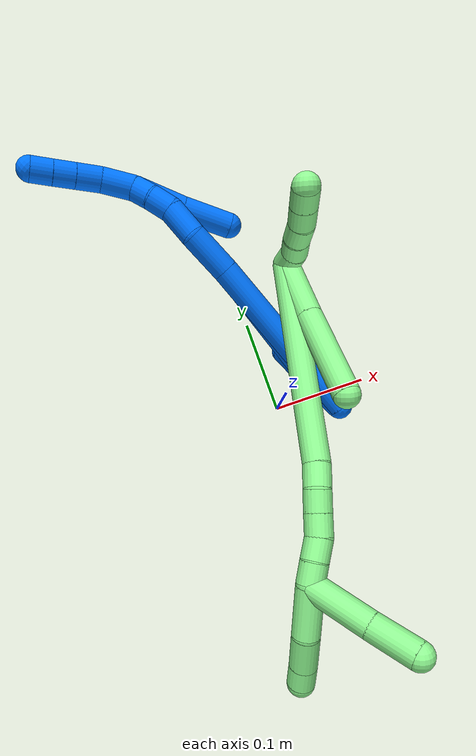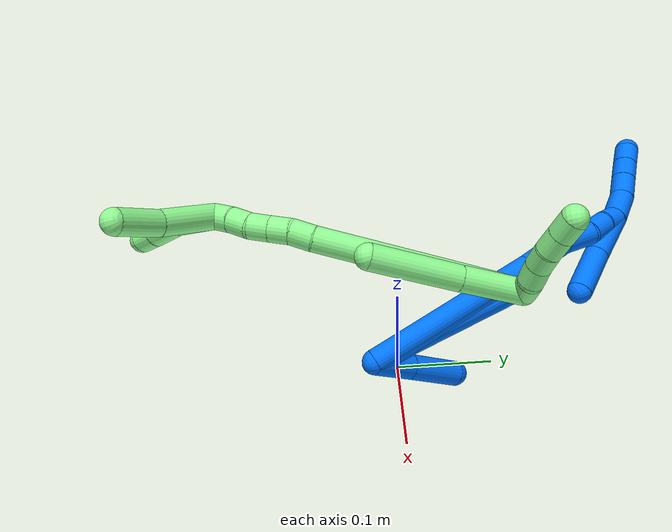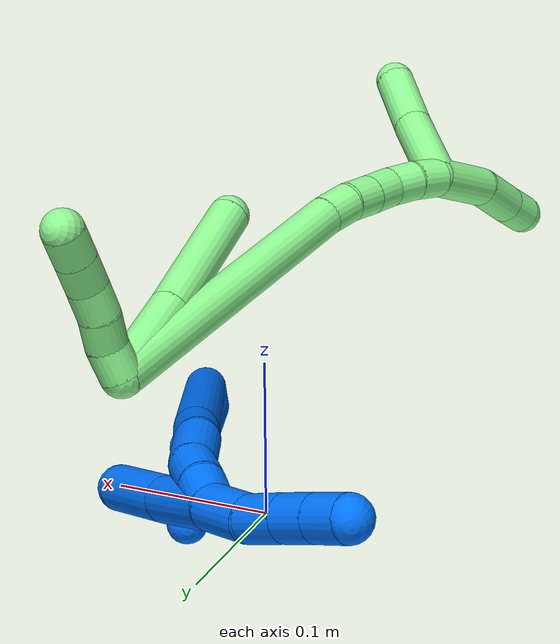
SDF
<sdf version="1.7">
 <world name="default">
  <model name="13">
   <static>0</static>
   <link name="13">
    <collision name="collision-cylinder-e_1_2_8">
     <pose>-0.012585 -0.017956 0.022479 0.674006 -0.412348 -0.146295</pose>
     <geometry><cylinder><radius>0.0125</radius><length>0.062804</length></cylinder></geometry>
     <surface>
      <friction><ode><mu>1.16</mu><mu2>1.16</mu2><slip1>0</slip1><slip2>0</slip2></ode></friction>
      <contact><ode><kp>1e+06</kp><kd>1</kd><max_vel>0</max_vel><min_depth>0.001</min_depth></ode></contact>
     </surface>
    </collision>
    <visual name="visual-cylinder-e_1_2_8">
     <pose>-0.012585 -0.017956 0.022479 0.674006 -0.412348 -0.146295</pose>
     <geometry><cylinder><radius>0.0125</radius><length>0.062804</length></cylinder></geometry>
     <material><ambient>0.564706 0.984314 0.572549 1</ambient></material>
    </visual>
    <collision name="collision-cylinder-e_2_8_6">
     <pose>-0.043424 -0.061599 0.075086 0.706008 -0.432028 -0.161347</pose>
     <geometry><cylinder><radius>0.0125</radius><length>0.087196</length></cylinder></geometry>
     <surface>
      <friction><ode><mu>1.16</mu><mu2>1.16</mu2><slip1>0</slip1><slip2>0</slip2></ode></friction>
      <contact><ode><kp>1e+06</kp><kd>1</kd><max_vel>0</max_vel><min_depth>0.001</min_depth></ode></contact>
     </surface>
    </collision>
    <visual name="visual-cylinder-e_2_8_6">
     <pose>-0.043424 -0.061599 0.075086 0.706008 -0.432028 -0.161347</pose>
     <geometry><cylinder><radius>0.0125</radius><length>0.087196</length></cylinder></geometry>
     <material><ambient>0.564706 0.984314 0.572549 1</ambient></material>
    </visual>
    <collision name="collision-cylinder-e_1_2_9">
     <pose>-0.00518 -0.006363 -0.005716 2.30267 -0.544486 -1.11871</pose>
     <geometry><cylinder><radius>0.0125</radius><length>0.02</length></cylinder></geometry>
     <surface>
      <friction><ode><mu>1.16</mu><mu2>1.16</mu2><slip1>0</slip1><slip2>0</slip2></ode></friction>
      <contact><ode><kp>1e+06</kp><kd>1</kd><max_vel>0</max_vel><min_depth>0.001</min_depth></ode></contact>
     </surface>
    </collision>
    <visual name="visual-cylinder-e_1_2_9">
     <pose>-0.00518 -0.006363 -0.005716 2.30267 -0.544486 -1.11871</pose>
     <geometry><cylinder><radius>0.0125</radius><length>0.02</length></cylinder></geometry>
     <material><ambient>0.564706 0.984314 0.572549 1</ambient></material>
    </visual>
    <collision name="collision-cylinder-e_2_9_10">
     <pose>-0.012678 -0.020289 -0.017551 2.25102 -0.233974 -0.48289</pose>
     <geometry><cylinder><radius>0.0125</radius><length>0.02</length></cylinder></geometry>
     <surface>
      <friction><ode><mu>1.16</mu><mu2>1.16</mu2><slip1>0</slip1><slip2>0</slip2></ode></friction>
      <contact><ode><kp>1e+06</kp><kd>1</kd><max_vel>0</max_vel><min_depth>0.001</min_depth></ode></contact>
     </surface>
    </collision>
    <visual name="visual-cylinder-e_2_9_10">
     <pose>-0.012678 -0.020289 -0.017551 2.25102 -0.233974 -0.48289</pose>
     <geometry><cylinder><radius>0.0125</radius><length>0.02</length></cylinder></geometry>
     <material><ambient>0.564706 0.984314 0.572549 1</ambient></material>
    </visual>
    <collision name="collision-cylinder-e_3_10_11">
     <pose>-0.018379 -0.034568 -0.030261 2.34687 -0.345007 -0.787007</pose>
     <geometry><cylinder><radius>0.0125</radius><length>0.02</length></cylinder></geometry>
     <surface>
      <friction><ode><mu>1.16</mu><mu2>1.16</mu2><slip1>0</slip1><slip2>0</slip2></ode></friction>
      <contact><ode><kp>1e+06</kp><kd>1</kd><max_vel>0</max_vel><min_depth>0.001</min_depth></ode></contact>
     </surface>
    </collision>
    <visual name="visual-cylinder-e_3_10_11">
     <pose>-0.018379 -0.034568 -0.030261 2.34687 -0.345007 -0.787007</pose>
     <geometry><cylinder><radius>0.0125</radius><length>0.02</length></cylinder></geometry>
     <material><ambient>0.564706 0.984314 0.572549 1</ambient></material>
    </visual>
    <collision name="collision-cylinder-e_4_11_12">
     <pose>-0.023713 -0.047668 -0.044299 2.43285 -0.196547 -0.520834</pose>
     <geometry><cylinder><radius>0.0125</radius><length>0.02</length></cylinder></geometry>
     <surface>
      <friction><ode><mu>1.16</mu><mu2>1.16</mu2><slip1>0</slip1><slip2>0</slip2></ode></friction>
      <contact><ode><kp>1e+06</kp><kd>1</kd><max_vel>0</max_vel><min_depth>0.001</min_depth></ode></contact>
     </surface>
    </collision>
    <visual name="visual-cylinder-e_4_11_12">
     <pose>-0.023713 -0.047668 -0.044299 2.43285 -0.196547 -0.520834</pose>
     <geometry><cylinder><radius>0.0125</radius><length>0.02</length></cylinder></geometry>
     <material><ambient>0.564706 0.984314 0.572549 1</ambient></material>
    </visual>
    <collision name="collision-cylinder-e_5_12_5">
     <pose>-0.027699 -0.0604 -0.059198 2.43609 -0.204736 -0.544231</pose>
     <geometry><cylinder><radius>0.0125</radius><length>0.02</length></cylinder></geometry>
     <surface>
      <friction><ode><mu>1.16</mu><mu2>1.16</mu2><slip1>0</slip1><slip2>0</slip2></ode></friction>
      <contact><ode><kp>1e+06</kp><kd>1</kd><max_vel>0</max_vel><min_depth>0.001</min_depth></ode></contact>
     </surface>
    </collision>
    <visual name="visual-cylinder-e_5_12_5">
     <pose>-0.027699 -0.0604 -0.059198 2.43609 -0.204736 -0.544231</pose>
     <geometry><cylinder><radius>0.0125</radius><length>0.02</length></cylinder></geometry>
     <material><ambient>0.564706 0.984314 0.572549 1</ambient></material>
    </visual>
    <collision name="collision-cylinder-e_1_2_13">
     <pose>-0.018673 -0.05448 0.080579 0.594505 -0.189672 -0.05826</pose>
     <geometry><cylinder><radius>0.0125</radius><length>0.198088</length></cylinder></geometry>
     <surface>
      <friction><ode><mu>1.16</mu><mu2>1.16</mu2><slip1>0</slip1><slip2>0</slip2></ode></friction>
      <contact><ode><kp>1e+06</kp><kd>1</kd><max_vel>0</max_vel><min_depth>0.001</min_depth></ode></contact>
     </surface>
    </collision>
    <visual name="visual-cylinder-e_1_2_13">
     <pose>-0.018673 -0.05448 0.080579 0.594505 -0.189672 -0.05826</pose>
     <geometry><cylinder><radius>0.0125</radius><length>0.198088</length></cylinder></geometry>
     <material><ambient>0.564706 0.984314 0.572549 1</ambient></material>
    </visual>
    <collision name="collision-cylinder-e_2_13_14">
     <pose>-0.038005 -0.114988 0.170105 0.592947 -0.060937 -0.01862</pose>
     <geometry><cylinder><radius>0.0125</radius><length>0.021616</length></cylinder></geometry>
     <surface>
      <friction><ode><mu>1.16</mu><mu2>1.16</mu2><slip1>0</slip1><slip2>0</slip2></ode></friction>
      <contact><ode><kp>1e+06</kp><kd>1</kd><max_vel>0</max_vel><min_depth>0.001</min_depth></ode></contact>
     </surface>
    </collision>
    <visual name="visual-cylinder-e_2_13_14">
     <pose>-0.038005 -0.114988 0.170105 0.592947 -0.060937 -0.01862</pose>
     <geometry><cylinder><radius>0.0125</radius><length>0.021616</length></cylinder></geometry>
     <material><ambient>0.564706 0.984314 0.572549 1</ambient></material>
    </visual>
    <collision name="collision-cylinder-e_3_14_15">
     <pose>-0.039156 -0.124931 0.188273 0.401461 -0.049199 -0.010012</pose>
     <geometry><cylinder><radius>0.0125</radius><length>0.02006</length></cylinder></geometry>
     <surface>
      <friction><ode><mu>1.16</mu><mu2>1.16</mu2><slip1>0</slip1><slip2>0</slip2></ode></friction>
      <contact><ode><kp>1e+06</kp><kd>1</kd><max_vel>0</max_vel><min_depth>0.001</min_depth></ode></contact>
     </surface>
    </collision>
    <visual name="visual-cylinder-e_3_14_15">
     <pose>-0.039156 -0.124931 0.188273 0.401461 -0.049199 -0.010012</pose>
     <geometry><cylinder><radius>0.0125</radius><length>0.02006</length></cylinder></geometry>
     <material><ambient>0.564706 0.984314 0.572549 1</ambient></material>
    </visual>
    <collision name="collision-cylinder-e_4_15_16">
     <pose>-0.040294 -0.132947 0.206715 0.418486 -0.063766 -0.013545</pose>
     <geometry><cylinder><radius>0.0125</radius><length>0.020226</length></cylinder></geometry>
     <surface>
      <friction><ode><mu>1.16</mu><mu2>1.16</mu2><slip1>0</slip1><slip2>0</slip2></ode></friction>
      <contact><ode><kp>1e+06</kp><kd>1</kd><max_vel>0</max_vel><min_depth>0.001</min_depth></ode></contact>
     </surface>
    </collision>
    <visual name="visual-cylinder-e_4_15_16">
     <pose>-0.040294 -0.132947 0.206715 0.418486 -0.063766 -0.013545</pose>
     <geometry><cylinder><radius>0.0125</radius><length>0.020226</length></cylinder></geometry>
     <material><ambient>0.564706 0.984314 0.572549 1</ambient></material>
    </visual>
    <collision name="collision-cylinder-e_5_16_17">
     <pose>-0.03935 -0.141796 0.224594 0.501617 0.159546 0.040957</pose>
     <geometry><cylinder><radius>0.0125</radius><length>0.02</length></cylinder></geometry>
     <surface>
      <friction><ode><mu>1.16</mu><mu2>1.16</mu2><slip1>0</slip1><slip2>0</slip2></ode></friction>
      <contact><ode><kp>1e+06</kp><kd>1</kd><max_vel>0</max_vel><min_depth>0.001</min_depth></ode></contact>
     </surface>
    </collision>
    <visual name="visual-cylinder-e_5_16_17">
     <pose>-0.03935 -0.141796 0.224594 0.501617 0.159546 0.040957</pose>
     <geometry><cylinder><radius>0.0125</radius><length>0.02</length></cylinder></geometry>
     <material><ambient>0.564706 0.984314 0.572549 1</ambient></material>
    </visual>
    <collision name="collision-cylinder-e_6_17_1">
     <pose>-0.036171 -0.150155 0.242444 0.374367 0.159601 0.03029</pose>
     <geometry><cylinder><radius>0.0125</radius><length>0.020009</length></cylinder></geometry>
     <surface>
      <friction><ode><mu>1.16</mu><mu2>1.16</mu2><slip1>0</slip1><slip2>0</slip2></ode></friction>
      <contact><ode><kp>1e+06</kp><kd>1</kd><max_vel>0</max_vel><min_depth>0.001</min_depth></ode></contact>
     </surface>
    </collision>
    <visual name="visual-cylinder-e_6_17_1">
     <pose>-0.036171 -0.150155 0.242444 0.374367 0.159601 0.03029</pose>
     <geometry><cylinder><radius>0.0125</radius><length>0.020009</length></cylinder></geometry>
     <material><ambient>0.564706 0.984314 0.572549 1</ambient></material>
    </visual>
    <collision name="collision-cylinder-e_1_1_18">
     <pose>-0.059526 -0.162313 0.262885 0.649745 -1.05553 -0.387728</pose>
     <geometry><cylinder><radius>0.0125</radius><length>0.057333</length></cylinder></geometry>
     <surface>
      <friction><ode><mu>1.16</mu><mu2>1.16</mu2><slip1>0</slip1><slip2>0</slip2></ode></friction>
      <contact><ode><kp>1e+06</kp><kd>1</kd><max_vel>0</max_vel><min_depth>0.001</min_depth></ode></contact>
     </surface>
    </collision>
    <visual name="visual-cylinder-e_1_1_18">
     <pose>-0.059526 -0.162313 0.262885 0.649745 -1.05553 -0.387728</pose>
     <geometry><cylinder><radius>0.0125</radius><length>0.057333</length></cylinder></geometry>
     <material><ambient>0.564706 0.984314 0.572549 1</ambient></material>
    </visual>
    <collision name="collision-cylinder-e_2_18_4">
     <pose>-0.102974 -0.179771 0.279904 0.996103 -1.04984 -0.610155</pose>
     <geometry><cylinder><radius>0.0125</radius><length>0.042667</length></cylinder></geometry>
     <surface>
      <friction><ode><mu>1.16</mu><mu2>1.16</mu2><slip1>0</slip1><slip2>0</slip2></ode></friction>
      <contact><ode><kp>1e+06</kp><kd>1</kd><max_vel>0</max_vel><min_depth>0.001</min_depth></ode></contact>
     </surface>
    </collision>
    <visual name="visual-cylinder-e_2_18_4">
     <pose>-0.102974 -0.179771 0.279904 0.996103 -1.04984 -0.610155</pose>
     <geometry><cylinder><radius>0.0125</radius><length>0.042667</length></cylinder></geometry>
     <material><ambient>0.564706 0.984314 0.572549 1</ambient></material>
    </visual>
    <collision name="collision-cylinder-e_1_1_19">
     <pose>-0.032313 -0.155493 0.274491 0.075359 0.098661 0.003722</pose>
     <geometry><cylinder><radius>0.0125</radius><length>0.046061</length></cylinder></geometry>
     <surface>
      <friction><ode><mu>1.16</mu><mu2>1.16</mu2><slip1>0</slip1><slip2>0</slip2></ode></friction>
      <contact><ode><kp>1e+06</kp><kd>1</kd><max_vel>0</max_vel><min_depth>0.001</min_depth></ode></contact>
     </surface>
    </collision>
    <visual name="visual-cylinder-e_1_1_19">
     <pose>-0.032313 -0.155493 0.274491 0.075359 0.098661 0.003722</pose>
     <geometry><cylinder><radius>0.0125</radius><length>0.046061</length></cylinder></geometry>
     <material><ambient>0.564706 0.984314 0.572549 1</ambient></material>
    </visual>
    <collision name="collision-cylinder-e_2_19_20">
     <pose>-0.028068 -0.154632 0.313772 -0.156129 0.118292 -0.009264</pose>
     <geometry><cylinder><radius>0.0125</radius><length>0.033495</length></cylinder></geometry>
     <surface>
      <friction><ode><mu>1.16</mu><mu2>1.16</mu2><slip1>0</slip1><slip2>0</slip2></ode></friction>
      <contact><ode><kp>1e+06</kp><kd>1</kd><max_vel>0</max_vel><min_depth>0.001</min_depth></ode></contact>
     </surface>
    </collision>
    <visual name="visual-cylinder-e_2_19_20">
     <pose>-0.028068 -0.154632 0.313772 -0.156129 0.118292 -0.009264</pose>
     <geometry><cylinder><radius>0.0125</radius><length>0.033495</length></cylinder></geometry>
     <material><ambient>0.564706 0.984314 0.572549 1</ambient></material>
    </visual>
    <collision name="collision-cylinder-e_3_20_3">
     <pose>-0.024597 -0.150735 0.340227 -0.13006 0.146699 -0.00957</pose>
     <geometry><cylinder><radius>0.0125</radius><length>0.020445</length></cylinder></geometry>
     <surface>
      <friction><ode><mu>1.16</mu><mu2>1.16</mu2><slip1>0</slip1><slip2>0</slip2></ode></friction>
      <contact><ode><kp>1e+06</kp><kd>1</kd><max_vel>0</max_vel><min_depth>0.001</min_depth></ode></contact>
     </surface>
    </collision>
    <visual name="visual-cylinder-e_3_20_3">
     <pose>-0.024597 -0.150735 0.340227 -0.13006 0.146699 -0.00957</pose>
     <geometry><cylinder><radius>0.0125</radius><length>0.020445</length></cylinder></geometry>
     <material><ambient>0.564706 0.984314 0.572549 1</ambient></material>
    </visual>
    <collision name="collision-sphere-3">
     <pose>-0.023103 -0.149423 0.350254 0 -0 0</pose>
     <geometry><sphere><radius>0.0125</radius></sphere></geometry>
     <surface>
      <friction><ode><mu>1.16</mu><mu2>1.16</mu2><slip1>0</slip1><slip2>0</slip2></ode></friction>
      <contact><ode><kp>1e+06</kp><kd>1</kd><max_vel>0</max_vel><min_depth>0.001</min_depth></ode></contact>
     </surface>
    </collision>
    <visual name="visual-sphere-3">
     <pose>-0.023103 -0.149423 0.350254 0 -0 0</pose>
     <geometry><sphere><radius>0.0125</radius></sphere></geometry>
     <material><ambient>0.564706 0.984314 0.572549 1</ambient></material>
    </visual>
    <collision name="collision-sphere-20">
     <pose>-0.026091 -0.152046 0.3302 0 -0 0</pose>
     <geometry><sphere><radius>0.0125</radius></sphere></geometry>
     <surface>
      <friction><ode><mu>1.16</mu><mu2>1.16</mu2><slip1>0</slip1><slip2>0</slip2></ode></friction>
      <contact><ode><kp>1e+06</kp><kd>1</kd><max_vel>0</max_vel><min_depth>0.001</min_depth></ode></contact>
     </surface>
    </collision>
    <visual name="visual-sphere-20">
     <pose>-0.026091 -0.152046 0.3302 0 -0 0</pose>
     <geometry><sphere><radius>0.0125</radius></sphere></geometry>
     <material><ambient>0.564706 0.984314 0.572549 1</ambient></material>
    </visual>
    <collision name="collision-sphere-19">
     <pose>-0.030044 -0.157218 0.297344 0 -0 0</pose>
     <geometry><sphere><radius>0.0125</radius></sphere></geometry>
     <surface>
      <friction><ode><mu>1.16</mu><mu2>1.16</mu2><slip1>0</slip1><slip2>0</slip2></ode></friction>
      <contact><ode><kp>1e+06</kp><kd>1</kd><max_vel>0</max_vel><min_depth>0.001</min_depth></ode></contact>
     </surface>
    </collision>
    <visual name="visual-sphere-19">
     <pose>-0.030044 -0.157218 0.297344 0 -0 0</pose>
     <geometry><sphere><radius>0.0125</radius></sphere></geometry>
     <material><ambient>0.564706 0.984314 0.572549 1</ambient></material>
    </visual>
    <collision name="collision-sphere-11">
     <pose>-0.021761 -0.041284 -0.036853 0 -0 0</pose>
     <geometry><sphere><radius>0.0125</radius></sphere></geometry>
     <surface>
      <friction><ode><mu>1.16</mu><mu2>1.16</mu2><slip1>0</slip1><slip2>0</slip2></ode></friction>
      <contact><ode><kp>1e+06</kp><kd>1</kd><max_vel>0</max_vel><min_depth>0.001</min_depth></ode></contact>
     </surface>
    </collision>
    <visual name="visual-sphere-11">
     <pose>-0.021761 -0.041284 -0.036853 0 -0 0</pose>
     <geometry><sphere><radius>0.0125</radius></sphere></geometry>
     <material><ambient>0.564706 0.984314 0.572549 1</ambient></material>
    </visual>
    <collision name="collision-sphere-10">
     <pose>-0.014996 -0.027852 -0.023669 0 -0 0</pose>
     <geometry><sphere><radius>0.0125</radius></sphere></geometry>
     <surface>
      <friction><ode><mu>1.16</mu><mu2>1.16</mu2><slip1>0</slip1><slip2>0</slip2></ode></friction>
      <contact><ode><kp>1e+06</kp><kd>1</kd><max_vel>0</max_vel><min_depth>0.001</min_depth></ode></contact>
     </surface>
    </collision>
    <visual name="visual-sphere-10">
     <pose>-0.014996 -0.027852 -0.023669 0 -0 0</pose>
     <geometry><sphere><radius>0.0125</radius></sphere></geometry>
     <material><ambient>0.564706 0.984314 0.572549 1</ambient></material>
    </visual>
    <collision name="collision-sphere-6">
     <pose>-0.06168 -0.087287 0.105213 0 -0 0</pose>
     <geometry><sphere><radius>0.0125</radius></sphere></geometry>
     <surface>
      <friction><ode><mu>1.16</mu><mu2>1.16</mu2><slip1>0</slip1><slip2>0</slip2></ode></friction>
      <contact><ode><kp>1e+06</kp><kd>1</kd><max_vel>0</max_vel><min_depth>0.001</min_depth></ode></contact>
     </surface>
    </collision>
    <visual name="visual-sphere-6">
     <pose>-0.06168 -0.087287 0.105213 0 -0 0</pose>
     <geometry><sphere><radius>0.0125</radius></sphere></geometry>
     <material><ambient>0.564706 0.984314 0.572549 1</ambient></material>
    </visual>
    <collision name="collision-sphere-9">
     <pose>-0.01036 -0.012727 -0.011433 0 -0 0</pose>
     <geometry><sphere><radius>0.0125</radius></sphere></geometry>
     <surface>
      <friction><ode><mu>1.16</mu><mu2>1.16</mu2><slip1>0</slip1><slip2>0</slip2></ode></friction>
      <contact><ode><kp>1e+06</kp><kd>1</kd><max_vel>0</max_vel><min_depth>0.001</min_depth></ode></contact>
     </surface>
    </collision>
    <visual name="visual-sphere-9">
     <pose>-0.01036 -0.012727 -0.011433 0 -0 0</pose>
     <geometry><sphere><radius>0.0125</radius></sphere></geometry>
     <material><ambient>0.564706 0.984314 0.572549 1</ambient></material>
    </visual>
    <collision name="collision-sphere-2">
     <geometry><sphere><radius>0.0125</radius></sphere></geometry>
     <surface>
      <friction><ode><mu>1.16</mu><mu2>1.16</mu2><slip1>0</slip1><slip2>0</slip2></ode></friction>
      <contact><ode><kp>1e+06</kp><kd>1</kd><max_vel>0</max_vel><min_depth>0.001</min_depth></ode></contact>
     </surface>
    </collision>
    <visual name="visual-sphere-2">
     <geometry><sphere><radius>0.0125</radius></sphere></geometry>
     <material><ambient>0.564706 0.984314 0.572549 1</ambient></material>
    </visual>
    <collision name="collision-sphere-8">
     <pose>-0.025169 -0.035912 0.044958 0 -0 0</pose>
     <geometry><sphere><radius>0.0125</radius></sphere></geometry>
     <surface>
      <friction><ode><mu>1.16</mu><mu2>1.16</mu2><slip1>0</slip1><slip2>0</slip2></ode></friction>
      <contact><ode><kp>1e+06</kp><kd>1</kd><max_vel>0</max_vel><min_depth>0.001</min_depth></ode></contact>
     </surface>
    </collision>
    <visual name="visual-sphere-8">
     <pose>-0.025169 -0.035912 0.044958 0 -0 0</pose>
     <geometry><sphere><radius>0.0125</radius></sphere></geometry>
     <material><ambient>0.564706 0.984314 0.572549 1</ambient></material>
    </visual>
    <collision name="collision-sphere-12">
     <pose>-0.025666 -0.054051 -0.051745 0 -0 0</pose>
     <geometry><sphere><radius>0.0125</radius></sphere></geometry>
     <surface>
      <friction><ode><mu>1.16</mu><mu2>1.16</mu2><slip1>0</slip1><slip2>0</slip2></ode></friction>
      <contact><ode><kp>1e+06</kp><kd>1</kd><max_vel>0</max_vel><min_depth>0.001</min_depth></ode></contact>
     </surface>
    </collision>
    <visual name="visual-sphere-12">
     <pose>-0.025666 -0.054051 -0.051745 0 -0 0</pose>
     <geometry><sphere><radius>0.0125</radius></sphere></geometry>
     <material><ambient>0.564706 0.984314 0.572549 1</ambient></material>
    </visual>
    <collision name="collision-sphere-5">
     <pose>-0.029732 -0.066749 -0.066652 0 -0 0</pose>
     <geometry><sphere><radius>0.0125</radius></sphere></geometry>
     <surface>
      <friction><ode><mu>1.16</mu><mu2>1.16</mu2><slip1>0</slip1><slip2>0</slip2></ode></friction>
      <contact><ode><kp>1e+06</kp><kd>1</kd><max_vel>0</max_vel><min_depth>0.001</min_depth></ode></contact>
     </surface>
    </collision>
    <visual name="visual-sphere-5">
     <pose>-0.029732 -0.066749 -0.066652 0 -0 0</pose>
     <geometry><sphere><radius>0.0125</radius></sphere></geometry>
     <material><ambient>0.564706 0.984314 0.572549 1</ambient></material>
    </visual>
    <collision name="collision-sphere-13">
     <pose>-0.037347 -0.108959 0.161158 0 -0 0</pose>
     <geometry><sphere><radius>0.0125</radius></sphere></geometry>
     <surface>
      <friction><ode><mu>1.16</mu><mu2>1.16</mu2><slip1>0</slip1><slip2>0</slip2></ode></friction>
      <contact><ode><kp>1e+06</kp><kd>1</kd><max_vel>0</max_vel><min_depth>0.001</min_depth></ode></contact>
     </surface>
    </collision>
    <visual name="visual-sphere-13">
     <pose>-0.037347 -0.108959 0.161158 0 -0 0</pose>
     <geometry><sphere><radius>0.0125</radius></sphere></geometry>
     <material><ambient>0.564706 0.984314 0.572549 1</ambient></material>
    </visual>
    <collision name="collision-sphere-14">
     <pose>-0.038663 -0.121016 0.179052 0 -0 0</pose>
     <geometry><sphere><radius>0.0125</radius></sphere></geometry>
     <surface>
      <friction><ode><mu>1.16</mu><mu2>1.16</mu2><slip1>0</slip1><slip2>0</slip2></ode></friction>
      <contact><ode><kp>1e+06</kp><kd>1</kd><max_vel>0</max_vel><min_depth>0.001</min_depth></ode></contact>
     </surface>
    </collision>
    <visual name="visual-sphere-14">
     <pose>-0.038663 -0.121016 0.179052 0 -0 0</pose>
     <geometry><sphere><radius>0.0125</radius></sphere></geometry>
     <material><ambient>0.564706 0.984314 0.572549 1</ambient></material>
    </visual>
    <collision name="collision-sphere-15">
     <pose>-0.03965 -0.128845 0.197494 0 -0 0</pose>
     <geometry><sphere><radius>0.0125</radius></sphere></geometry>
     <surface>
      <friction><ode><mu>1.16</mu><mu2>1.16</mu2><slip1>0</slip1><slip2>0</slip2></ode></friction>
      <contact><ode><kp>1e+06</kp><kd>1</kd><max_vel>0</max_vel><min_depth>0.001</min_depth></ode></contact>
     </surface>
    </collision>
    <visual name="visual-sphere-15">
     <pose>-0.03965 -0.128845 0.197494 0 -0 0</pose>
     <geometry><sphere><radius>0.0125</radius></sphere></geometry>
     <material><ambient>0.564706 0.984314 0.572549 1</ambient></material>
    </visual>
    <collision name="collision-sphere-16">
     <pose>-0.040939 -0.137048 0.215937 0 -0 0</pose>
     <geometry><sphere><radius>0.0125</radius></sphere></geometry>
     <surface>
      <friction><ode><mu>1.16</mu><mu2>1.16</mu2><slip1>0</slip1><slip2>0</slip2></ode></friction>
      <contact><ode><kp>1e+06</kp><kd>1</kd><max_vel>0</max_vel><min_depth>0.001</min_depth></ode></contact>
     </surface>
    </collision>
    <visual name="visual-sphere-16">
     <pose>-0.040939 -0.137048 0.215937 0 -0 0</pose>
     <geometry><sphere><radius>0.0125</radius></sphere></geometry>
     <material><ambient>0.564706 0.984314 0.572549 1</ambient></material>
    </visual>
    <collision name="collision-sphere-17">
     <pose>-0.037761 -0.146543 0.233251 0 -0 0</pose>
     <geometry><sphere><radius>0.0125</radius></sphere></geometry>
     <surface>
      <friction><ode><mu>1.16</mu><mu2>1.16</mu2><slip1>0</slip1><slip2>0</slip2></ode></friction>
      <contact><ode><kp>1e+06</kp><kd>1</kd><max_vel>0</max_vel><min_depth>0.001</min_depth></ode></contact>
     </surface>
    </collision>
    <visual name="visual-sphere-17">
     <pose>-0.037761 -0.146543 0.233251 0 -0 0</pose>
     <geometry><sphere><radius>0.0125</radius></sphere></geometry>
     <material><ambient>0.564706 0.984314 0.572549 1</ambient></material>
    </visual>
    <collision name="collision-sphere-1">
     <pose>-0.034581 -0.153767 0.251638 0 -0 0</pose>
     <geometry><sphere><radius>0.0125</radius></sphere></geometry>
     <surface>
      <friction><ode><mu>1.16</mu><mu2>1.16</mu2><slip1>0</slip1><slip2>0</slip2></ode></friction>
      <contact><ode><kp>1e+06</kp><kd>1</kd><max_vel>0</max_vel><min_depth>0.001</min_depth></ode></contact>
     </surface>
    </collision>
    <visual name="visual-sphere-1">
     <pose>-0.034581 -0.153767 0.251638 0 -0 0</pose>
     <geometry><sphere><radius>0.0125</radius></sphere></geometry>
     <material><ambient>0.564706 0.984314 0.572549 1</ambient></material>
    </visual>
    <collision name="collision-sphere-18">
     <pose>-0.08447 -0.170859 0.274133 0 -0 0</pose>
     <geometry><sphere><radius>0.0125</radius></sphere></geometry>
     <surface>
      <friction><ode><mu>1.16</mu><mu2>1.16</mu2><slip1>0</slip1><slip2>0</slip2></ode></friction>
      <contact><ode><kp>1e+06</kp><kd>1</kd><max_vel>0</max_vel><min_depth>0.001</min_depth></ode></contact>
     </surface>
    </collision>
    <visual name="visual-sphere-18">
     <pose>-0.08447 -0.170859 0.274133 0 -0 0</pose>
     <geometry><sphere><radius>0.0125</radius></sphere></geometry>
     <material><ambient>0.564706 0.984314 0.572549 1</ambient></material>
    </visual>
    <collision name="collision-sphere-4">
     <pose>-0.121477 -0.188683 0.285676 0 -0 0</pose>
     <geometry><sphere><radius>0.0125</radius></sphere></geometry>
     <surface>
      <friction><ode><mu>1.16</mu><mu2>1.16</mu2><slip1>0</slip1><slip2>0</slip2></ode></friction>
      <contact><ode><kp>1e+06</kp><kd>1</kd><max_vel>0</max_vel><min_depth>0.001</min_depth></ode></contact>
     </surface>
    </collision>
    <visual name="visual-sphere-4">
     <pose>-0.121477 -0.188683 0.285676 0 -0 0</pose>
     <geometry><sphere><radius>0.0125</radius></sphere></geometry>
     <material><ambient>0.564706 0.984314 0.572549 1</ambient></material>
    </visual>
    <inertial>
     <pose>-0.032932 -0.088796 0.131842 0 -0 0</pose>
     <mass>0.75</mass>
     <inertia>
      <ixx>0.000681</ixx>
      <ixy>0</ixy>
      <ixz>0</ixz>
      <iyy>0.00057</iyy>
      <iyz>0</iyz>
      <izz>0.000638</izz>
     </inertia>
    </inertial>
   </link>
   <pose>0.037033 0.112887 0.12926 -2.00079 0.259769 2.76504</pose>
  </model>
  <model name="14">
   <static>0</static>
   <link name="14">
    <collision name="collision-cylinder-e_1_2_8">
     <pose>-0.0006 0.000345 0.020625 -0.016732 -0.029084 0.000243</pose>
     <geometry><cylinder><radius>0.0125</radius><length>0.041274</length></cylinder></geometry>
     <surface>
      <friction><ode><mu>1.16</mu><mu2>1.16</mu2><slip1>0</slip1><slip2>0</slip2></ode></friction>
      <contact><ode><kp>1e+06</kp><kd>1</kd><max_vel>0</max_vel><min_depth>0.001</min_depth></ode></contact>
     </surface>
    </collision>
    <visual name="visual-cylinder-e_1_2_8">
     <pose>-0.0006 0.000345 0.020625 -0.016732 -0.029084 0.000243</pose>
     <geometry><cylinder><radius>0.0125</radius><length>0.041274</length></cylinder></geometry>
     <material><ambient>0 0.462745 1 1</ambient></material>
    </visual>
    <collision name="collision-cylinder-e_2_8_6">
     <pose>0.003521 -0.0029 0.095289 0.066343 0.086962 0.002888</pose>
     <geometry><cylinder><radius>0.0125</radius><length>0.108726</length></cylinder></geometry>
     <surface>
      <friction><ode><mu>1.16</mu><mu2>1.16</mu2><slip1>0</slip1><slip2>0</slip2></ode></friction>
      <contact><ode><kp>1e+06</kp><kd>1</kd><max_vel>0</max_vel><min_depth>0.001</min_depth></ode></contact>
     </surface>
    </collision>
    <visual name="visual-cylinder-e_2_8_6">
     <pose>0.003521 -0.0029 0.095289 0.066343 0.086962 0.002888</pose>
     <geometry><cylinder><radius>0.0125</radius><length>0.108726</length></cylinder></geometry>
     <material><ambient>0 0.462745 1 1</ambient></material>
    </visual>
    <collision name="collision-cylinder-e_1_2_9">
     <pose>0.002632 0.013136 0.016392 -0.675568 0.124628 -0.043825</pose>
     <geometry><cylinder><radius>0.0125</radius><length>0.042341</length></cylinder></geometry>
     <surface>
      <friction><ode><mu>1.16</mu><mu2>1.16</mu2><slip1>0</slip1><slip2>0</slip2></ode></friction>
      <contact><ode><kp>1e+06</kp><kd>1</kd><max_vel>0</max_vel><min_depth>0.001</min_depth></ode></contact>
     </surface>
    </collision>
    <visual name="visual-cylinder-e_1_2_9">
     <pose>0.002632 0.013136 0.016392 -0.675568 0.124628 -0.043825</pose>
     <geometry><cylinder><radius>0.0125</radius><length>0.042341</length></cylinder></geometry>
     <material><ambient>0 0.462745 1 1</ambient></material>
    </visual>
    <collision name="collision-cylinder-e_2_9_5">
     <pose>0.00938 0.044152 0.055023 -0.677174 0.143281 -0.050532</pose>
     <geometry><cylinder><radius>0.0125</radius><length>0.057659</length></cylinder></geometry>
     <surface>
      <friction><ode><mu>1.16</mu><mu2>1.16</mu2><slip1>0</slip1><slip2>0</slip2></ode></friction>
      <contact><ode><kp>1e+06</kp><kd>1</kd><max_vel>0</max_vel><min_depth>0.001</min_depth></ode></contact>
     </surface>
    </collision>
    <visual name="visual-cylinder-e_2_9_5">
     <pose>0.00938 0.044152 0.055023 -0.677174 0.143281 -0.050532</pose>
     <geometry><cylinder><radius>0.0125</radius><length>0.057659</length></cylinder></geometry>
     <material><ambient>0 0.462745 1 1</ambient></material>
    </visual>
    <collision name="collision-cylinder-e_1_2_10">
     <pose>0.002709 -0.012627 0.088182 0.142228 0.030403 0.002166</pose>
     <geometry><cylinder><radius>0.0125</radius><length>0.178246</length></cylinder></geometry>
     <surface>
      <friction><ode><mu>1.16</mu><mu2>1.16</mu2><slip1>0</slip1><slip2>0</slip2></ode></friction>
      <contact><ode><kp>1e+06</kp><kd>1</kd><max_vel>0</max_vel><min_depth>0.001</min_depth></ode></contact>
     </surface>
    </collision>
    <visual name="visual-cylinder-e_1_2_10">
     <pose>0.002709 -0.012627 0.088182 0.142228 0.030403 0.002166</pose>
     <geometry><cylinder><radius>0.0125</radius><length>0.178246</length></cylinder></geometry>
     <material><ambient>0 0.462745 1 1</ambient></material>
    </visual>
    <collision name="collision-cylinder-e_2_10_11">
     <pose>0.004898 -0.028897 0.198641 0.16209 -0.023052 -0.001872</pose>
     <geometry><cylinder><radius>0.0125</radius><length>0.045158</length></cylinder></geometry>
     <surface>
      <friction><ode><mu>1.16</mu><mu2>1.16</mu2><slip1>0</slip1><slip2>0</slip2></ode></friction>
      <contact><ode><kp>1e+06</kp><kd>1</kd><max_vel>0</max_vel><min_depth>0.001</min_depth></ode></contact>
     </surface>
    </collision>
    <visual name="visual-cylinder-e_2_10_11">
     <pose>0.004898 -0.028897 0.198641 0.16209 -0.023052 -0.001872</pose>
     <geometry><cylinder><radius>0.0125</radius><length>0.045158</length></cylinder></geometry>
     <material><ambient>0 0.462745 1 1</ambient></material>
    </visual>
    <collision name="collision-cylinder-e_3_11_12">
     <pose>0.005818 -0.030764 0.237315 -0.107916 0.087098 -0.004707</pose>
     <geometry><cylinder><radius>0.0125</radius><length>0.03311</length></cylinder></geometry>
     <surface>
      <friction><ode><mu>1.16</mu><mu2>1.16</mu2><slip1>0</slip1><slip2>0</slip2></ode></friction>
      <contact><ode><kp>1e+06</kp><kd>1</kd><max_vel>0</max_vel><min_depth>0.001</min_depth></ode></contact>
     </surface>
    </collision>
    <visual name="visual-cylinder-e_3_11_12">
     <pose>0.005818 -0.030764 0.237315 -0.107916 0.087098 -0.004707</pose>
     <geometry><cylinder><radius>0.0125</radius><length>0.03311</length></cylinder></geometry>
     <material><ambient>0 0.462745 1 1</ambient></material>
    </visual>
    <collision name="collision-cylinder-e_4_12_13">
     <pose>0.00487 -0.027493 0.264795 -0.133985 -0.210343 0.014165</pose>
     <geometry><cylinder><radius>0.0125</radius><length>0.022873</length></cylinder></geometry>
     <surface>
      <friction><ode><mu>1.16</mu><mu2>1.16</mu2><slip1>0</slip1><slip2>0</slip2></ode></friction>
      <contact><ode><kp>1e+06</kp><kd>1</kd><max_vel>0</max_vel><min_depth>0.001</min_depth></ode></contact>
     </surface>
    </collision>
    <visual name="visual-cylinder-e_4_12_13">
     <pose>0.00487 -0.027493 0.264795 -0.133985 -0.210343 0.014165</pose>
     <geometry><cylinder><radius>0.0125</radius><length>0.022873</length></cylinder></geometry>
     <material><ambient>0 0.462745 1 1</ambient></material>
    </visual>
    <collision name="collision-cylinder-e_5_13_1">
     <pose>0.000347 -0.022952 0.285491 -0.306997 -0.208609 0.03239</pose>
     <geometry><cylinder><radius>0.0125</radius><length>0.020614</length></cylinder></geometry>
     <surface>
      <friction><ode><mu>1.16</mu><mu2>1.16</mu2><slip1>0</slip1><slip2>0</slip2></ode></friction>
      <contact><ode><kp>1e+06</kp><kd>1</kd><max_vel>0</max_vel><min_depth>0.001</min_depth></ode></contact>
     </surface>
    </collision>
    <visual name="visual-cylinder-e_5_13_1">
     <pose>0.000347 -0.022952 0.285491 -0.306997 -0.208609 0.03239</pose>
     <geometry><cylinder><radius>0.0125</radius><length>0.020614</length></cylinder></geometry>
     <material><ambient>0 0.462745 1 1</ambient></material>
    </visual>
    <collision name="collision-cylinder-e_1_1_14">
     <pose>-0.010947 -0.020869 0.308502 0.071808 -0.598413 -0.022159</pose>
     <geometry><cylinder><radius>0.0125</radius><length>0.032518</length></cylinder></geometry>
     <surface>
      <friction><ode><mu>1.16</mu><mu2>1.16</mu2><slip1>0</slip1><slip2>0</slip2></ode></friction>
      <contact><ode><kp>1e+06</kp><kd>1</kd><max_vel>0</max_vel><min_depth>0.001</min_depth></ode></contact>
     </surface>
    </collision>
    <visual name="visual-cylinder-e_1_1_14">
     <pose>-0.010947 -0.020869 0.308502 0.071808 -0.598413 -0.022159</pose>
     <geometry><cylinder><radius>0.0125</radius><length>0.032518</length></cylinder></geometry>
     <material><ambient>0 0.462745 1 1</ambient></material>
    </visual>
    <collision name="collision-cylinder-e_2_14_15">
     <pose>-0.028579 -0.024604 0.330611 0.308024 -0.747535 -0.121622</pose>
     <geometry><cylinder><radius>0.0125</radius><length>0.024926</length></cylinder></geometry>
     <surface>
      <friction><ode><mu>1.16</mu><mu2>1.16</mu2><slip1>0</slip1><slip2>0</slip2></ode></friction>
      <contact><ode><kp>1e+06</kp><kd>1</kd><max_vel>0</max_vel><min_depth>0.001</min_depth></ode></contact>
     </surface>
    </collision>
    <visual name="visual-cylinder-e_2_14_15">
     <pose>-0.028579 -0.024604 0.330611 0.308024 -0.747535 -0.121622</pose>
     <geometry><cylinder><radius>0.0125</radius><length>0.024926</length></cylinder></geometry>
     <material><ambient>0 0.462745 1 1</ambient></material>
    </visual>
    <collision name="collision-cylinder-e_3_15_16">
     <pose>-0.044284 -0.029639 0.34679 0.294334 -0.747373 -0.116121</pose>
     <geometry><cylinder><radius>0.0125</radius><length>0.021282</length></cylinder></geometry>
     <surface>
      <friction><ode><mu>1.16</mu><mu2>1.16</mu2><slip1>0</slip1><slip2>0</slip2></ode></friction>
      <contact><ode><kp>1e+06</kp><kd>1</kd><max_vel>0</max_vel><min_depth>0.001</min_depth></ode></contact>
     </surface>
    </collision>
    <visual name="visual-cylinder-e_3_15_16">
     <pose>-0.044284 -0.029639 0.34679 0.294334 -0.747373 -0.116121</pose>
     <geometry><cylinder><radius>0.0125</radius><length>0.021282</length></cylinder></geometry>
     <material><ambient>0 0.462745 1 1</ambient></material>
    </visual>
    <collision name="collision-cylinder-e_4_16_4">
     <pose>-0.058661 -0.034032 0.361847 0.273595 -0.736437 -0.106121</pose>
     <geometry><cylinder><radius>0.0125</radius><length>0.021274</length></cylinder></geometry>
     <surface>
      <friction><ode><mu>1.16</mu><mu2>1.16</mu2><slip1>0</slip1><slip2>0</slip2></ode></friction>
      <contact><ode><kp>1e+06</kp><kd>1</kd><max_vel>0</max_vel><min_depth>0.001</min_depth></ode></contact>
     </surface>
    </collision>
    <visual name="visual-cylinder-e_4_16_4">
     <pose>-0.058661 -0.034032 0.361847 0.273595 -0.736437 -0.106121</pose>
     <geometry><cylinder><radius>0.0125</radius><length>0.021274</length></cylinder></geometry>
     <material><ambient>0 0.462745 1 1</ambient></material>
    </visual>
    <collision name="collision-cylinder-e_1_1_17">
     <pose>0.009707 -0.015144 0.273261 -2.92696 0.474928 -2.30405</pose>
     <geometry><cylinder><radius>0.0125</radius><length>0.050275</length></cylinder></geometry>
     <surface>
      <friction><ode><mu>1.16</mu><mu2>1.16</mu2><slip1>0</slip1><slip2>0</slip2></ode></friction>
      <contact><ode><kp>1e+06</kp><kd>1</kd><max_vel>0</max_vel><min_depth>0.001</min_depth></ode></contact>
     </surface>
    </collision>
    <visual name="visual-cylinder-e_1_1_17">
     <pose>0.009707 -0.015144 0.273261 -2.92696 0.474928 -2.30405</pose>
     <geometry><cylinder><radius>0.0125</radius><length>0.050275</length></cylinder></geometry>
     <material><ambient>0 0.462745 1 1</ambient></material>
    </visual>
    <collision name="collision-cylinder-e_2_17_3">
     <pose>0.033591 -0.007063 0.230119 -2.98699 0.521609 -2.57668</pose>
     <geometry><cylinder><radius>0.0125</radius><length>0.049725</length></cylinder></geometry>
     <surface>
      <friction><ode><mu>1.16</mu><mu2>1.16</mu2><slip1>0</slip1><slip2>0</slip2></ode></friction>
      <contact><ode><kp>1e+06</kp><kd>1</kd><max_vel>0</max_vel><min_depth>0.001</min_depth></ode></contact>
     </surface>
    </collision>
    <visual name="visual-cylinder-e_2_17_3">
     <pose>0.033591 -0.007063 0.230119 -2.98699 0.521609 -2.57668</pose>
     <geometry><cylinder><radius>0.0125</radius><length>0.049725</length></cylinder></geometry>
     <material><ambient>0 0.462745 1 1</ambient></material>
    </visual>
    <collision name="collision-sphere-3">
     <pose>0.045979 -0.003744 0.20882 0 -0 0</pose>
     <geometry><sphere><radius>0.0125</radius></sphere></geometry>
     <surface>
      <friction><ode><mu>1.16</mu><mu2>1.16</mu2><slip1>0</slip1><slip2>0</slip2></ode></friction>
      <contact><ode><kp>1e+06</kp><kd>1</kd><max_vel>0</max_vel><min_depth>0.001</min_depth></ode></contact>
     </surface>
    </collision>
    <visual name="visual-sphere-3">
     <pose>0.045979 -0.003744 0.20882 0 -0 0</pose>
     <geometry><sphere><radius>0.0125</radius></sphere></geometry>
     <material><ambient>0 0.462745 1 1</ambient></material>
    </visual>
    <collision name="collision-sphere-17">
     <pose>0.021202 -0.010382 0.251418 0 -0 0</pose>
     <geometry><sphere><radius>0.0125</radius></sphere></geometry>
     <surface>
      <friction><ode><mu>1.16</mu><mu2>1.16</mu2><slip1>0</slip1><slip2>0</slip2></ode></friction>
      <contact><ode><kp>1e+06</kp><kd>1</kd><max_vel>0</max_vel><min_depth>0.001</min_depth></ode></contact>
     </surface>
    </collision>
    <visual name="visual-sphere-17">
     <pose>0.021202 -0.010382 0.251418 0 -0 0</pose>
     <geometry><sphere><radius>0.0125</radius></sphere></geometry>
     <material><ambient>0 0.462745 1 1</ambient></material>
    </visual>
    <collision name="collision-sphere-4">
     <pose>-0.065806 -0.036162 0.369434 0 -0 0</pose>
     <geometry><sphere><radius>0.0125</radius></sphere></geometry>
     <surface>
      <friction><ode><mu>1.16</mu><mu2>1.16</mu2><slip1>0</slip1><slip2>0</slip2></ode></friction>
      <contact><ode><kp>1e+06</kp><kd>1</kd><max_vel>0</max_vel><min_depth>0.001</min_depth></ode></contact>
     </surface>
    </collision>
    <visual name="visual-sphere-4">
     <pose>-0.065806 -0.036162 0.369434 0 -0 0</pose>
     <geometry><sphere><radius>0.0125</radius></sphere></geometry>
     <material><ambient>0 0.462745 1 1</ambient></material>
    </visual>
    <collision name="collision-sphere-16">
     <pose>-0.051517 -0.031903 0.35426 0 -0 0</pose>
     <geometry><sphere><radius>0.0125</radius></sphere></geometry>
     <surface>
      <friction><ode><mu>1.16</mu><mu2>1.16</mu2><slip1>0</slip1><slip2>0</slip2></ode></friction>
      <contact><ode><kp>1e+06</kp><kd>1</kd><max_vel>0</max_vel><min_depth>0.001</min_depth></ode></contact>
     </surface>
    </collision>
    <visual name="visual-sphere-16">
     <pose>-0.051517 -0.031903 0.35426 0 -0 0</pose>
     <geometry><sphere><radius>0.0125</radius></sphere></geometry>
     <material><ambient>0 0.462745 1 1</ambient></material>
    </visual>
    <collision name="collision-sphere-15">
     <pose>-0.037051 -0.027375 0.339321 0 -0 0</pose>
     <geometry><sphere><radius>0.0125</radius></sphere></geometry>
     <surface>
      <friction><ode><mu>1.16</mu><mu2>1.16</mu2><slip1>0</slip1><slip2>0</slip2></ode></friction>
      <contact><ode><kp>1e+06</kp><kd>1</kd><max_vel>0</max_vel><min_depth>0.001</min_depth></ode></contact>
     </surface>
    </collision>
    <visual name="visual-sphere-15">
     <pose>-0.037051 -0.027375 0.339321 0 -0 0</pose>
     <geometry><sphere><radius>0.0125</radius></sphere></geometry>
     <material><ambient>0 0.462745 1 1</ambient></material>
    </visual>
    <collision name="collision-sphere-14">
     <pose>-0.020106 -0.021833 0.321902 0 -0 0</pose>
     <geometry><sphere><radius>0.0125</radius></sphere></geometry>
     <surface>
      <friction><ode><mu>1.16</mu><mu2>1.16</mu2><slip1>0</slip1><slip2>0</slip2></ode></friction>
      <contact><ode><kp>1e+06</kp><kd>1</kd><max_vel>0</max_vel><min_depth>0.001</min_depth></ode></contact>
     </surface>
    </collision>
    <visual name="visual-sphere-14">
     <pose>-0.020106 -0.021833 0.321902 0 -0 0</pose>
     <geometry><sphere><radius>0.0125</radius></sphere></geometry>
     <material><ambient>0 0.462745 1 1</ambient></material>
    </visual>
    <collision name="collision-sphere-1">
     <pose>-0.001787 -0.019905 0.295103 0 -0 0</pose>
     <geometry><sphere><radius>0.0125</radius></sphere></geometry>
     <surface>
      <friction><ode><mu>1.16</mu><mu2>1.16</mu2><slip1>0</slip1><slip2>0</slip2></ode></friction>
      <contact><ode><kp>1e+06</kp><kd>1</kd><max_vel>0</max_vel><min_depth>0.001</min_depth></ode></contact>
     </surface>
    </collision>
    <visual name="visual-sphere-1">
     <pose>-0.001787 -0.019905 0.295103 0 -0 0</pose>
     <geometry><sphere><radius>0.0125</radius></sphere></geometry>
     <material><ambient>0 0.462745 1 1</ambient></material>
    </visual>
    <collision name="collision-sphere-13">
     <pose>0.002482 -0.025999 0.275879 0 -0 0</pose>
     <geometry><sphere><radius>0.0125</radius></sphere></geometry>
     <surface>
      <friction><ode><mu>1.16</mu><mu2>1.16</mu2><slip1>0</slip1><slip2>0</slip2></ode></friction>
      <contact><ode><kp>1e+06</kp><kd>1</kd><max_vel>0</max_vel><min_depth>0.001</min_depth></ode></contact>
     </surface>
    </collision>
    <visual name="visual-sphere-13">
     <pose>0.002482 -0.025999 0.275879 0 -0 0</pose>
     <geometry><sphere><radius>0.0125</radius></sphere></geometry>
     <material><ambient>0 0.462745 1 1</ambient></material>
    </visual>
    <collision name="collision-sphere-12">
     <pose>0.007258 -0.028988 0.253711 0 -0 0</pose>
     <geometry><sphere><radius>0.0125</radius></sphere></geometry>
     <surface>
      <friction><ode><mu>1.16</mu><mu2>1.16</mu2><slip1>0</slip1><slip2>0</slip2></ode></friction>
      <contact><ode><kp>1e+06</kp><kd>1</kd><max_vel>0</max_vel><min_depth>0.001</min_depth></ode></contact>
     </surface>
    </collision>
    <visual name="visual-sphere-12">
     <pose>0.007258 -0.028988 0.253711 0 -0 0</pose>
     <geometry><sphere><radius>0.0125</radius></sphere></geometry>
     <material><ambient>0 0.462745 1 1</ambient></material>
    </visual>
    <collision name="collision-sphere-11">
     <pose>0.004377 -0.03254 0.220919 0 -0 0</pose>
     <geometry><sphere><radius>0.0125</radius></sphere></geometry>
     <surface>
      <friction><ode><mu>1.16</mu><mu2>1.16</mu2><slip1>0</slip1><slip2>0</slip2></ode></friction>
      <contact><ode><kp>1e+06</kp><kd>1</kd><max_vel>0</max_vel><min_depth>0.001</min_depth></ode></contact>
     </surface>
    </collision>
    <visual name="visual-sphere-11">
     <pose>0.004377 -0.03254 0.220919 0 -0 0</pose>
     <geometry><sphere><radius>0.0125</radius></sphere></geometry>
     <material><ambient>0 0.462745 1 1</ambient></material>
    </visual>
    <collision name="collision-sphere-8">
     <pose>-0.0012 0.00069 0.041251 0 -0 0</pose>
     <geometry><sphere><radius>0.0125</radius></sphere></geometry>
     <surface>
      <friction><ode><mu>1.16</mu><mu2>1.16</mu2><slip1>0</slip1><slip2>0</slip2></ode></friction>
      <contact><ode><kp>1e+06</kp><kd>1</kd><max_vel>0</max_vel><min_depth>0.001</min_depth></ode></contact>
     </surface>
    </collision>
    <visual name="visual-sphere-8">
     <pose>-0.0012 0.00069 0.041251 0 -0 0</pose>
     <geometry><sphere><radius>0.0125</radius></sphere></geometry>
     <material><ambient>0 0.462745 1 1</ambient></material>
    </visual>
    <collision name="collision-sphere-2">
     <geometry><sphere><radius>0.0125</radius></sphere></geometry>
     <surface>
      <friction><ode><mu>1.16</mu><mu2>1.16</mu2><slip1>0</slip1><slip2>0</slip2></ode></friction>
      <contact><ode><kp>1e+06</kp><kd>1</kd><max_vel>0</max_vel><min_depth>0.001</min_depth></ode></contact>
     </surface>
    </collision>
    <visual name="visual-sphere-2">
     <geometry><sphere><radius>0.0125</radius></sphere></geometry>
     <material><ambient>0 0.462745 1 1</ambient></material>
    </visual>
    <collision name="collision-sphere-9">
     <pose>0.005263 0.026272 0.032785 0 -0 0</pose>
     <geometry><sphere><radius>0.0125</radius></sphere></geometry>
     <surface>
      <friction><ode><mu>1.16</mu><mu2>1.16</mu2><slip1>0</slip1><slip2>0</slip2></ode></friction>
      <contact><ode><kp>1e+06</kp><kd>1</kd><max_vel>0</max_vel><min_depth>0.001</min_depth></ode></contact>
     </surface>
    </collision>
    <visual name="visual-sphere-9">
     <pose>0.005263 0.026272 0.032785 0 -0 0</pose>
     <geometry><sphere><radius>0.0125</radius></sphere></geometry>
     <material><ambient>0 0.462745 1 1</ambient></material>
    </visual>
    <collision name="collision-sphere-6">
     <pose>0.008243 -0.00649 0.149328 0 -0 0</pose>
     <geometry><sphere><radius>0.0125</radius></sphere></geometry>
     <surface>
      <friction><ode><mu>1.16</mu><mu2>1.16</mu2><slip1>0</slip1><slip2>0</slip2></ode></friction>
      <contact><ode><kp>1e+06</kp><kd>1</kd><max_vel>0</max_vel><min_depth>0.001</min_depth></ode></contact>
     </surface>
    </collision>
    <visual name="visual-sphere-6">
     <pose>0.008243 -0.00649 0.149328 0 -0 0</pose>
     <geometry><sphere><radius>0.0125</radius></sphere></geometry>
     <material><ambient>0 0.462745 1 1</ambient></material>
    </visual>
    <collision name="collision-sphere-5">
     <pose>0.013496 0.062031 0.07726 0 -0 0</pose>
     <geometry><sphere><radius>0.0125</radius></sphere></geometry>
     <surface>
      <friction><ode><mu>1.16</mu><mu2>1.16</mu2><slip1>0</slip1><slip2>0</slip2></ode></friction>
      <contact><ode><kp>1e+06</kp><kd>1</kd><max_vel>0</max_vel><min_depth>0.001</min_depth></ode></contact>
     </surface>
    </collision>
    <visual name="visual-sphere-5">
     <pose>0.013496 0.062031 0.07726 0 -0 0</pose>
     <geometry><sphere><radius>0.0125</radius></sphere></geometry>
     <material><ambient>0 0.462745 1 1</ambient></material>
    </visual>
    <collision name="collision-sphere-10">
     <pose>0.005418 -0.025254 0.176364 0 -0 0</pose>
     <geometry><sphere><radius>0.0125</radius></sphere></geometry>
     <surface>
      <friction><ode><mu>1.16</mu><mu2>1.16</mu2><slip1>0</slip1><slip2>0</slip2></ode></friction>
      <contact><ode><kp>1e+06</kp><kd>1</kd><max_vel>0</max_vel><min_depth>0.001</min_depth></ode></contact>
     </surface>
    </collision>
    <visual name="visual-sphere-10">
     <pose>0.005418 -0.025254 0.176364 0 -0 0</pose>
     <geometry><sphere><radius>0.0125</radius></sphere></geometry>
     <material><ambient>0 0.462745 1 1</ambient></material>
    </visual>
    <inertial>
     <pose>0.001234 -0.008846 0.157463 0 -0 0</pose>
     <mass>0.75</mass>
     <inertia>
      <ixx>0.000617</ixx>
      <ixy>0</ixy>
      <ixz>0</ixz>
      <iyy>0.000648</iyy>
      <iyz>0</iyz>
      <izz>6.4e-05</izz>
     </inertia>
    </inertial>
   </link>
   <pose>0.05182 -0.025971 0.065118 -1.43325 0.014771 0.449734</pose>
  </model>
 </world>
</sdf>
